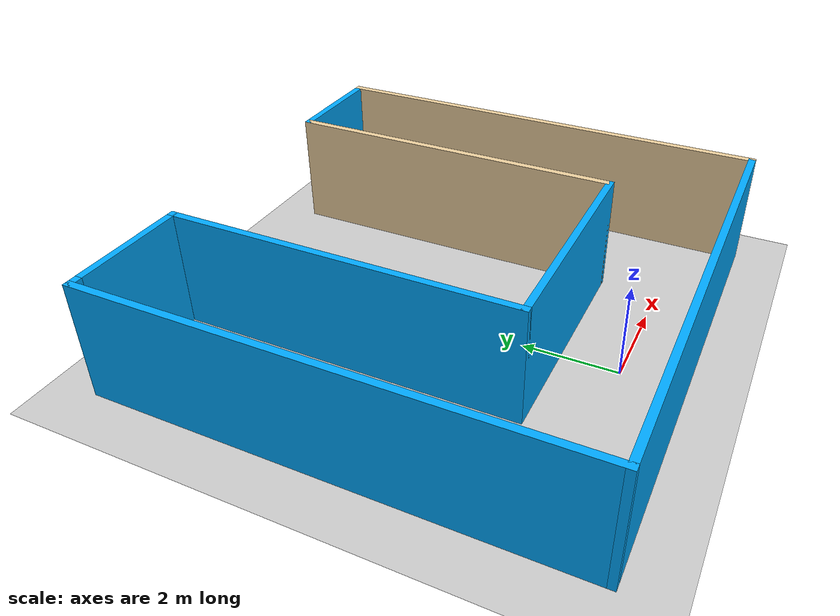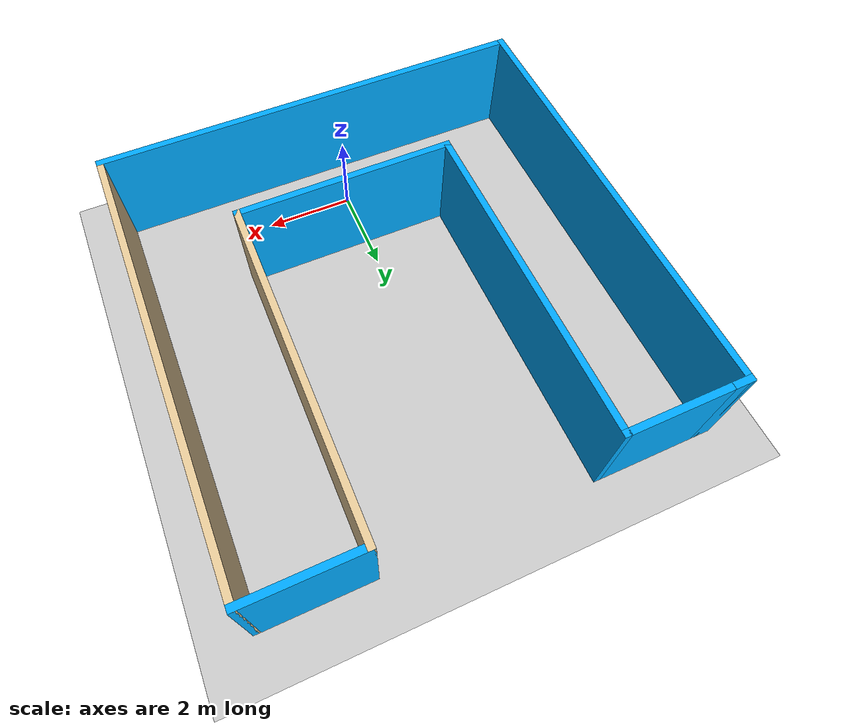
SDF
<sdf version="1.6">
 <world name="default">
  <light name="sun" type="directional">
   <pose>0 0 10 0 -0 0</pose>
   <diffuse>0.8 0.8 0.8 1</diffuse>
   <specular>0.2 0.2 0.2 1</specular>
   <attenuation>
    <range>1000</range>
    <constant>0.9</constant>
    <linear>0.01</linear>
    <quadratic>0.001</quadratic>
   </attenuation>
   <direction>-0.5 0.1 -0.9</direction>
  </light>
  <model name="ground_plane">
   <static>1</static>
   <link name="link">
    <collision name="collision">
     <geometry><plane><normal>0 0 1</normal><size>100 100</size></plane></geometry>
     <surface>
      <contact><collide_bitmask>65535</collide_bitmask></contact>
      <friction><ode><mu>100</mu><mu2>50</mu2></ode></friction>
     </surface>
    </collision>
    <visual name="visual">
     <cast_shadows>0</cast_shadows>
     <geometry><plane><normal>0 0 1</normal><size>100 100</size></plane></geometry>
     <material>
      <script><uri>file://media/materials/scripts/gazebo.material</uri><name>Gazebo/Grey</name></script>
     </material>
    </visual>
   </link>
  </model>
  <gravity>0 0 -9.8</gravity>
  <magnetic_field>6e-06 2.3e-05 -4.2e-05</magnetic_field>
  <atmosphere type="adiabatic"/>
  <physics name="default_physics" default="0" type="ode">
   <max_step_size>0.001</max_step_size>
   <real_time_factor>1</real_time_factor>
   <real_time_update_rate>1000</real_time_update_rate>
  </physics>
  <scene><ambient>0.4 0.4 0.4 1</ambient><background>0.7 0.7 0.7 1</background><shadows>1</shadows></scene>
  <spherical_coordinates>
   <surface_model>EARTH_WGS84</surface_model>
   <latitude_deg>0</latitude_deg>
   <longitude_deg>0</longitude_deg>
   <elevation>0</elevation>
   <heading_deg>0</heading_deg>
  </spherical_coordinates>
  <model name="my_world">
   <pose>0.256178 3.70887 0 0 -0 0</pose>
   <link name="Wall_0">
    <collision name="Wall_0_Collision">
     <geometry><box><size>2.5 0.15 2.5</size></box></geometry>
     <pose>0 0 1.25 0 -0 0</pose>
    </collision>
    <visual name="Wall_0_Visual">
     <pose>0 0 1.25 0 -0 0</pose>
     <geometry><box><size>2.5 0.15 2.5</size></box></geometry>
     <material>
      <script><uri>file://media/materials/scripts/gazebo.material</uri><name>Gazebo/Grey</name></script>
      <ambient>0 0.666667 1 1</ambient>
     </material>
     <meta><layer>0</layer></meta>
    </visual>
    <pose>-3.45 4.925 0 0 -0 0</pose>
   </link>
   <link name="Wall_1">
    <collision name="Wall_1_Collision">
     <geometry><box><size>7.5 0.15 2.5</size></box></geometry>
     <pose>0 0 1.25 0 -0 0</pose>
    </collision>
    <visual name="Wall_1_Visual">
     <pose>0 0 1.25 0 -0 0</pose>
     <geometry><box><size>7.5 0.15 2.5</size></box></geometry>
     <material>
      <script><uri>file://media/materials/scripts/gazebo.material</uri><name>Gazebo/Grey</name></script>
      <ambient>0 0.666667 1 1</ambient>
     </material>
     <meta><layer>0</layer></meta>
    </visual>
    <pose>-2.275 1.25 0 0 0 -1.5708</pose>
   </link>
   <link name="Wall_2">
    <collision name="Wall_2_Collision">
     <geometry><box><size>5 0.15 2.5</size></box></geometry>
     <pose>0 0 1.25 0 -0 0</pose>
    </collision>
    <visual name="Wall_2_Visual">
     <pose>0 0 1.25 0 -0 0</pose>
     <geometry><box><size>5 0.15 2.5</size></box></geometry>
     <material>
      <script><uri>file://media/materials/scripts/gazebo.material</uri><name>Gazebo/Grey</name></script>
      <ambient>0 0.666667 1 1</ambient>
     </material>
     <meta><layer>0</layer></meta>
    </visual>
    <pose>0.15 -2.425 0 0 -0 0</pose>
   </link>
   <link name="Wall_3">
    <collision name="Wall_3_Collision">
     <geometry><box><size>7.5 0.15 2.5</size></box></geometry>
     <pose>0 0 1.25 0 -0 0</pose>
    </collision>
    <visual name="Wall_3_Visual">
     <pose>0 0 1.25 0 -0 0</pose>
     <geometry><box><size>7.5 0.15 2.5</size></box></geometry>
     <material>
      <script><uri>file://media/materials/scripts/gazebo.material</uri><name>Gazebo/Grey</name></script>
      <ambient>0.921569 0.807843 0.615686 1</ambient>
     </material>
     <meta><layer>0</layer></meta>
    </visual>
    <pose>2.575 1.25 0 0 -0 1.5708</pose>
   </link>
   <link name="Wall_4">
    <collision name="Wall_4_Collision">
     <geometry><box><size>2.5 0.15 2.5</size></box></geometry>
     <pose>0 0 1.25 0 -0 0</pose>
    </collision>
    <visual name="Wall_4_Visual">
     <pose>0 0 1.25 0 -0 0</pose>
     <geometry><box><size>2.5 0.15 2.5</size></box></geometry>
     <material>
      <script><uri>file://media/materials/scripts/gazebo.material</uri><name>Gazebo/Grey</name></script>
      <ambient>0 0.666667 1 1</ambient>
     </material>
     <meta><layer>0</layer></meta>
    </visual>
    <pose>3.75 4.925 0 0 -0 0</pose>
   </link>
   <link name="Wall_5">
    <collision name="Wall_5_Collision">
     <geometry><box><size>10 0.15 2.5</size></box></geometry>
     <pose>0 0 1.25 0 -0 0</pose>
    </collision>
    <visual name="Wall_5_Visual">
     <pose>0 0 1.25 0 -0 0</pose>
     <geometry><box><size>10 0.15 2.5</size></box></geometry>
     <material>
      <script><uri>file://media/materials/scripts/gazebo.material</uri><name>Gazebo/Grey</name></script>
      <ambient>0.921569 0.807843 0.615686 1</ambient>
     </material>
     <meta><layer>0</layer></meta>
    </visual>
    <pose>4.925 0 0 0 0 -1.5708</pose>
   </link>
   <link name="Wall_6">
    <collision name="Wall_6_Collision">
     <geometry><box><size>10 0.15 2.5</size></box></geometry>
     <pose>0 0 1.25 0 -0 0</pose>
    </collision>
    <visual name="Wall_6_Visual">
     <pose>0 0 1.25 0 -0 0</pose>
     <geometry><box><size>10 0.15 2.5</size></box></geometry>
     <material>
      <script><uri>file://media/materials/scripts/gazebo.material</uri><name>Gazebo/Grey</name></script>
      <ambient>0 0.666667 1 1</ambient>
     </material>
     <meta><layer>0</layer></meta>
    </visual>
    <pose>0 -4.925 0 0 -0 3.14159</pose>
   </link>
   <link name="Wall_7">
    <collision name="Wall_7_Collision">
     <geometry><box><size>10 0.15 2.5</size></box></geometry>
     <pose>0 0 1.25 0 -0 0</pose>
    </collision>
    <visual name="Wall_7_Visual">
     <pose>0 0 1.25 0 -0 0</pose>
     <geometry><box><size>10 0.15 2.5</size></box></geometry>
     <material>
      <script><uri>file://media/materials/scripts/gazebo.material</uri><name>Gazebo/Grey</name></script>
      <ambient>0 0.666667 1 1</ambient>
     </material>
     <meta><layer>0</layer></meta>
    </visual>
    <pose>-4.925 0 0 0 -0 1.5708</pose>
   </link>
   <link name="Wall_8">
    <collision name="Wall_8_Collision">
     <geometry><box><size>0.45 0.15 2.5</size></box></geometry>
     <pose>0 0 1.25 0 -0 0</pose>
    </collision>
    <visual name="Wall_8_Visual">
     <pose>0 0 1.25 0 -0 0</pose>
     <geometry><box><size>0.45 0.15 2.5</size></box></geometry>
     <material>
      <script><uri>file://media/materials/scripts/gazebo.material</uri><name>Gazebo/Grey</name></script>
      <ambient>0 0.666667 1 1</ambient>
     </material>
     <meta><layer>0</layer></meta>
    </visual>
    <pose>-4.775 4.925 0 0 -0 0</pose>
   </link>
   <static>1</static>
  </model>
 </world>
</sdf>
